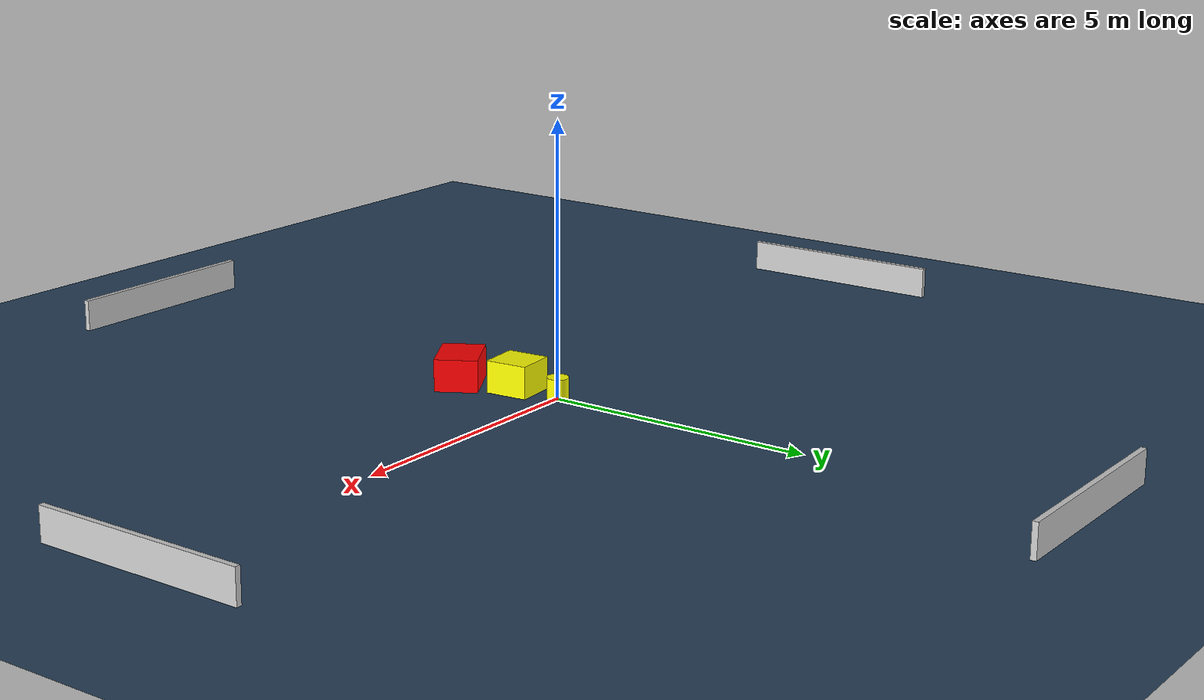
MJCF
<?xml version="1.0" ?>
<mujoco model="generated_environment">
  <option timestep="0.01" integrator="RK4" cone="elliptic"/>
  <default>
    <geom density="1"/>
  </default>
  <asset>
    <texture builtin="gradient" height="3072" name="skybox" rgb1="0.3 0.5 0.7" rgb2="0 0 0" type="skybox" width="512"/>
    <texture builtin="checker" height="300" name="groundplane" rgb1="0.2 0.3 0.4" rgb2="0.1 0.2 0.3" type="2d" width="300"/>
    <material name="groundplane" reflectance="0.2" texrepeat="5 5" texture="groundplane"/>
  </asset>
  <worldbody>
    <light dir="0 0 -1" directional="true" pos="0 0 1.5"/>
    <geom condim="3" friction="0.5 0.005 0.001" material="groundplane" name="floor" pos="0 0 0" size="0 0 0.05" type="plane"/>
    <body name="walls">
      <geom name="wall_1" condim="4" pos="-10.0 0.0 0.3" rgba="0.800000011920929 0.800000011920929 0.800000011920929 1.0" size="0.05 2.0 0.3" type="box"/>
      <geom name="wall_2" condim="4" pos="10.0 0.0 0.3" rgba="0.800000011920929 0.800000011920929 0.800000011920929 1.0" size="0.05 2.0 0.3" type="box"/>
      <geom name="wall_3" condim="4" pos="0.0 -10.0 0.3" rgba="0.800000011920929 0.800000011920929 0.800000011920929 1.0" size="2.0 0.05 0.3" type="box"/>
      <geom name="wall_4" condim="4" pos="0.0 10.0 0.3" rgba="0.800000011920929 0.800000011920929 0.800000011920929 1.0" size="2.0 0.05 0.3" type="box"/>
    </body>
    <body name="robot">
      <joint name="joint_x" type="slide" pos="0 0 0" axis="1 0 0"/>
      <joint name="joint_y" type="slide" pos="0 0 0" axis="0 1 0"/>
      <geom name="robot" type="cylinder" pos="0.0 0.0 0.2" size="0.2 0.2 0.0" mass="5.0" friction="1.0 0.005 0.0001" condim="4" rgba="1.0 1.0 0.0 1.0"/>
    </body>
    <body name="obstacle_1_movable">
      <geom name="obstacle_1_movable" condim="4" pos="0.0630699435054842 -0.8566586226579487 0.3" euler="0 0 185.28874358906432" friction="0.0 0.005 0.001" rgba="1.0 1.0 0.0 1.0" size="0.38082757702486003 0.39458809668400086 0.3" type="box" mass="0.1"/>
      <joint type="free"/>
    </body>
    <body name="obstacle_2_static">
      <geom name="obstacle_2_static" condim="4" pos="0.3478678417229988 -1.9386077514940716 0.3" euler="0 0 210.32166333370532" friction="0.0 0.005 0.001" rgba="1.0 0.0 0.0 1.0" size="0.5262327260146537 0.39587503171691873 0.3" type="box"/>
    </body>
  </worldbody>
  <actuator>
    <motor name="actuator_x" joint="joint_x" gear="1" ctrlrange="-1 1"/>
    <motor name="actuator_y" joint="joint_y" gear="1" ctrlrange="-1 1"/>
  </actuator>
</mujoco>
